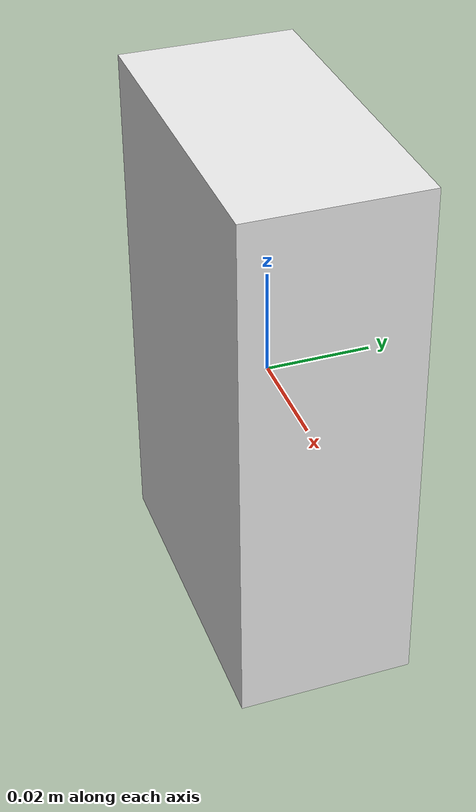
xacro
<robot name="obstacle"
    xmlns:xacro="https://www.ros.org/wiki/xacro">

    <xacro:include filename="$(find ros_basics_models)/urdf/utils/materials.xacro" />
    <xacro:include filename="$(find ros_basics_models)/urdf/utils/inertia.xacro" />

    <xacro:property name="mass" value="0.061"/>

    <link name="obstacle">
        <visual>
            <origin xyz="0 0 0"/>
            <geometry>
                <box size="0.064 0.033 0.101"/>
            </geometry>
            <material name="white"/>
        </visual>
        <collision>
            <origin xyz="0 0 0"/>
            <geometry>
                <box size="0.064 0.033 0.101"/>
            </geometry>
            <material name="white"/>
        </collision>
        <inertial>
            <mass value="${mass}"/>
            <xacro:box_inertia mass="${mass}" x="0.064" y="0.033" z="0.101" />
        </inertial>
    </link>

    <gazebo reference="obstacle">
        <turnGravityOff>false</turnGravityOff>
        <material>Gazebo/Green</material>
    </gazebo>

</robot>
